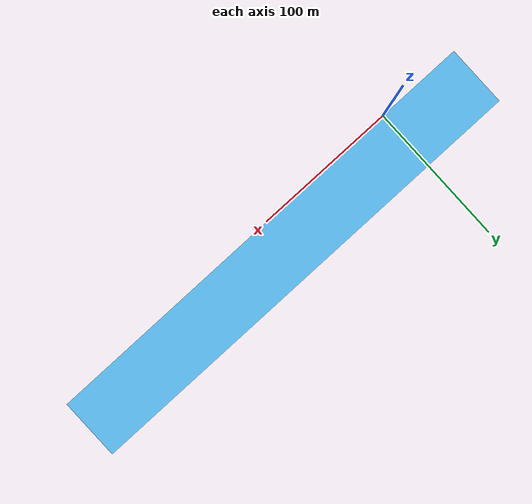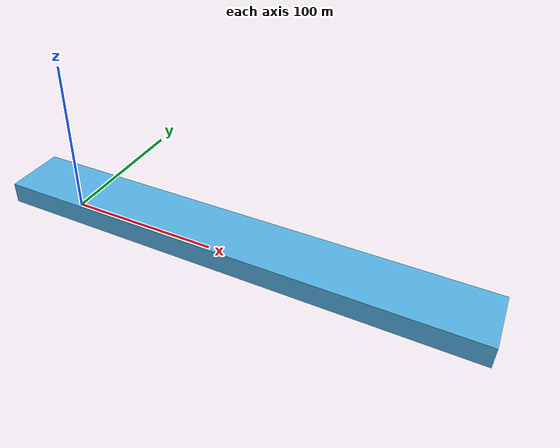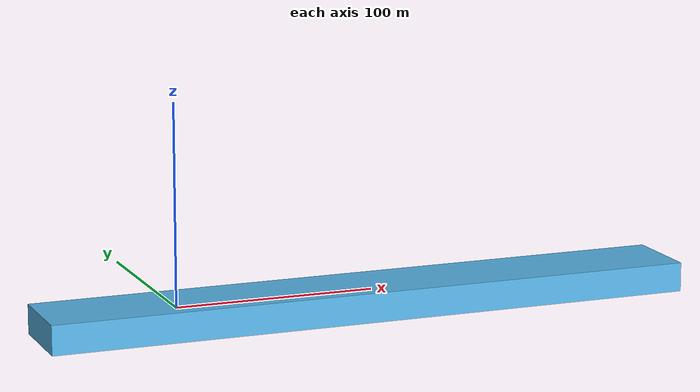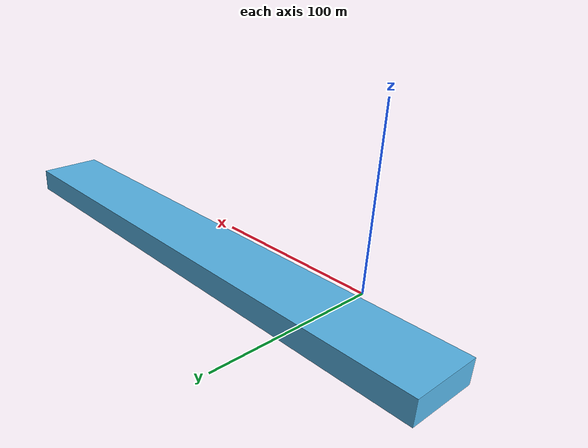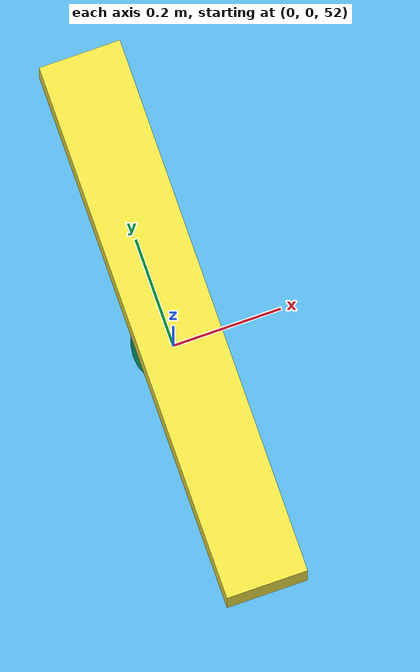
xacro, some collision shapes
<?xml version="1.0"?>

<robot name="container_ship" xmlns:xacro="http://ros.org/wiki/xacro">

    <xacro:arg name="windType" default="global" />
    <xacro:arg name="waterType" default="global" />
    <xacro:property name="windType" value="$(arg windType)" />
    <xacro:property name="waterType" value="$(arg waterType)" />
    <xacro:property name="dampingXYZ" value="1.88 10 6.66" />
    <xacro:property name="angularDampingXYZ" value="2 15 2" />

    <xacro:property name="PI" value="3.1415926535897931"/>

    <!-- Body properties -->
    <xacro:property name="front_body_mass" value="0.5"/>
    <xacro:property name="back_body_mass" value="2"/>
    <xacro:property name="middle_body_mass" value="143620"/>
    <xacro:property name="back_water_displaced_mass" value="10"/>
    <xacro:property name="middle_water_displaced_mass" value="10"/>
    <xacro:property name="front_water_displaced_mass" value="5"/>
    <xacro:property name="extraPayload" value="0"/>
    <xacro:property name="scale" value="1.5"/>
    <xacro:property name="bl1" value=".1" />
    <xacro:property name="bl2" value=".1" />

    <link name="base_footprint">
      <visual>
        <origin xyz="0 0 0" rpy="0 0 0" />
        <geometry>
          <box size="0.001 0.001 0.001" />
        </geometry>
      </visual>
      <collision>
        <origin rpy="0 0 0" xyz="0 0 0"/>
        <geometry>
           <box size="0.001 0.001 0.001" />
        </geometry>
      </collision>
      <inertial>
        <origin rpy="0 0 0" xyz="0 0 0"/>
        <mass value="0.001"/>
        <inertia ixx="0.0001" ixy="0.0" ixz="0.0" iyy="0.0001" iyz="0.0" izz="0.0001"/>
      </inertial>
    </link>

    <link name="base_link">
        <wind>false</wind>
        <visual>
          <origin rpy="0 0 0" xyz="105.2 21.54 -10"/>
          <geometry>
            <mesh filename="package://autonoship_simulation/container_ship/container_ship.stl" scale="${scale} ${scale} ${scale}"/>
          </geometry>
        </visual>
        <collision>
          <origin rpy="0 0 0" xyz="105.2 21.54 -10"/>
          <geometry>
             <box size="334 43.08 15" />
          </geometry>
        </collision>

        <inertial>
          <origin rpy="0 0 0" xyz="0 0 0"/>
          <mass value="${middle_body_mass+extraPayload}"/>
          <inertia ixx="24822323" ixy="0.0" ixz="0.0" iyy="1337832268" iyz="0.0" izz="1357268841"/>
        </inertial>
    </link>

    <joint name="base_link_joint" type="fixed">
        <origin xyz="0 0 0"/>
        <parent link="base_footprint"/>
        <child link="base_link"/>
    </joint>

    <link name="radar_rotation_link">
      <gravity>true</gravity>
      <inertial>
        <mass value="0.1"/>
        <inertia ixx="0.000140625" ixy="0.0" ixz="0.0" iyy="0.000140625" iyz="0.0" izz="0.00028125"/>
      </inertial>

      <collision>
        <geometry>
          <cylinder radius="0.075" length="0.15"/>
        </geometry>
      </collision>

      <visual>
        <geometry>
          <cylinder radius="0.075" length="0.15"/>
        </geometry>
      </visual>
    </link>

    <joint name="radar_rotation_link_joint" type="continuous">
        <origin xyz="0 0 52.1"/>
        <parent link="base_link"/>
        <child link="radar_rotation_link"/>
        <axis xyz="0 0 1"/>
    </joint>

    <link name="radar_link">
      <gravity>true</gravity>
      <inertial>
        <mass value="0.1"/>
        <inertia ixx="0.0001667" ixy="0.0" ixz="0.0" iyy="0.0001667" iyz="0.0" izz="0.0001667"/>
      </inertial>

      <collision>
        <geometry>
          <box size="0.15 1 0.1" />
        </geometry>
      </collision>

      <visual>
        <geometry>
          <box size="0.15 1 0.1" />
        </geometry>
      </visual>
    </link>

    <joint name="radar_link_joint" type="fixed">
        <origin xyz="0 0 0.125"/>
        <parent link="radar_rotation_link"/>
        <child link="radar_link"/>
    </joint>

  <gazebo reference="radar_link_joint">
    <disableFixedJointLumping>true</disableFixedJointLumping>
  </gazebo>

</robot>
